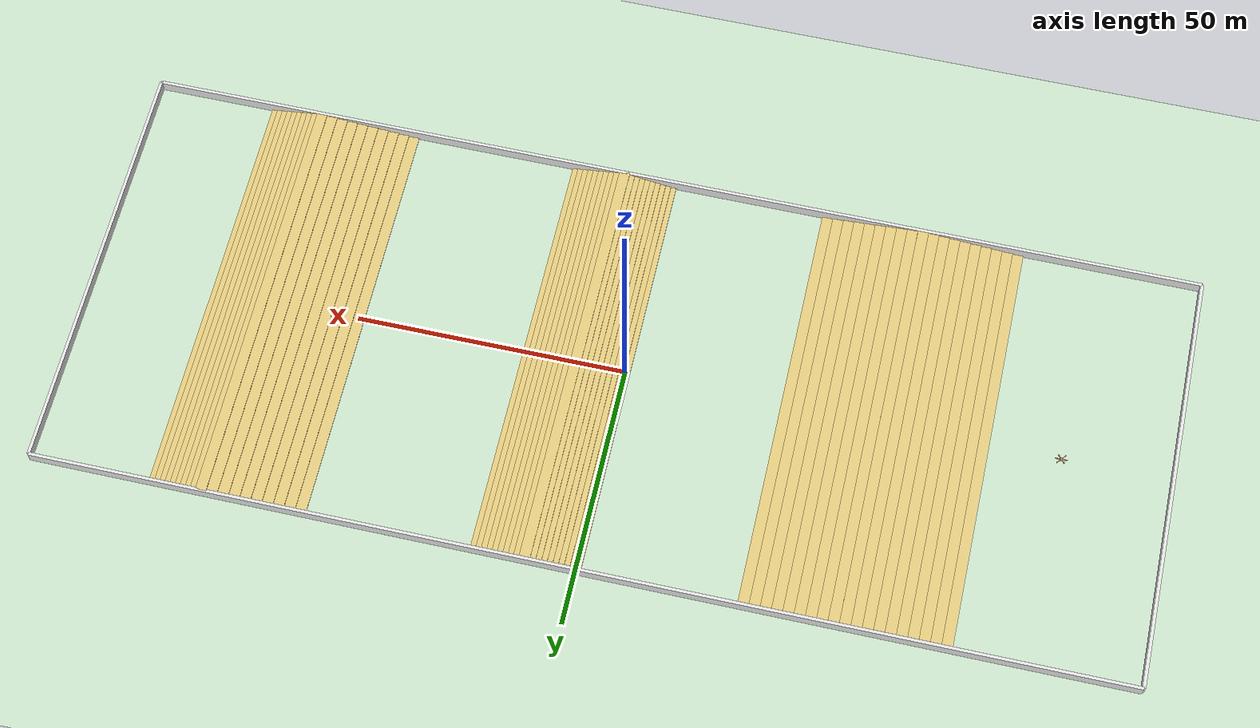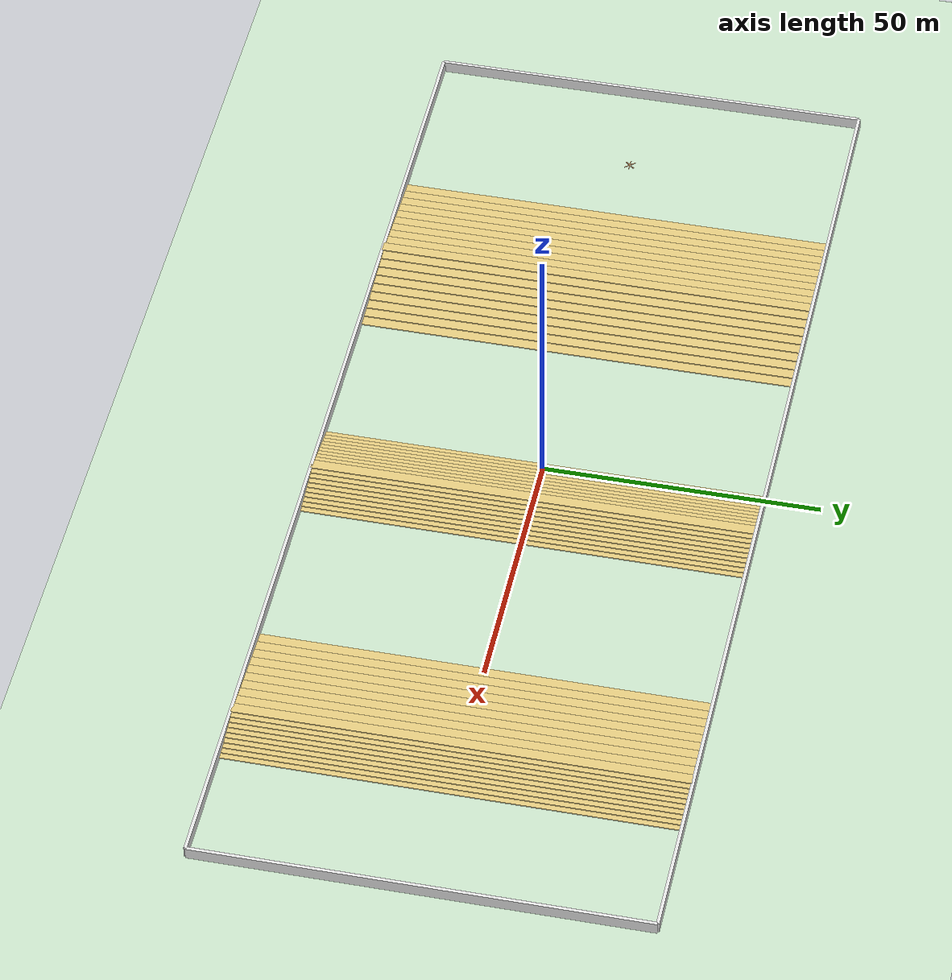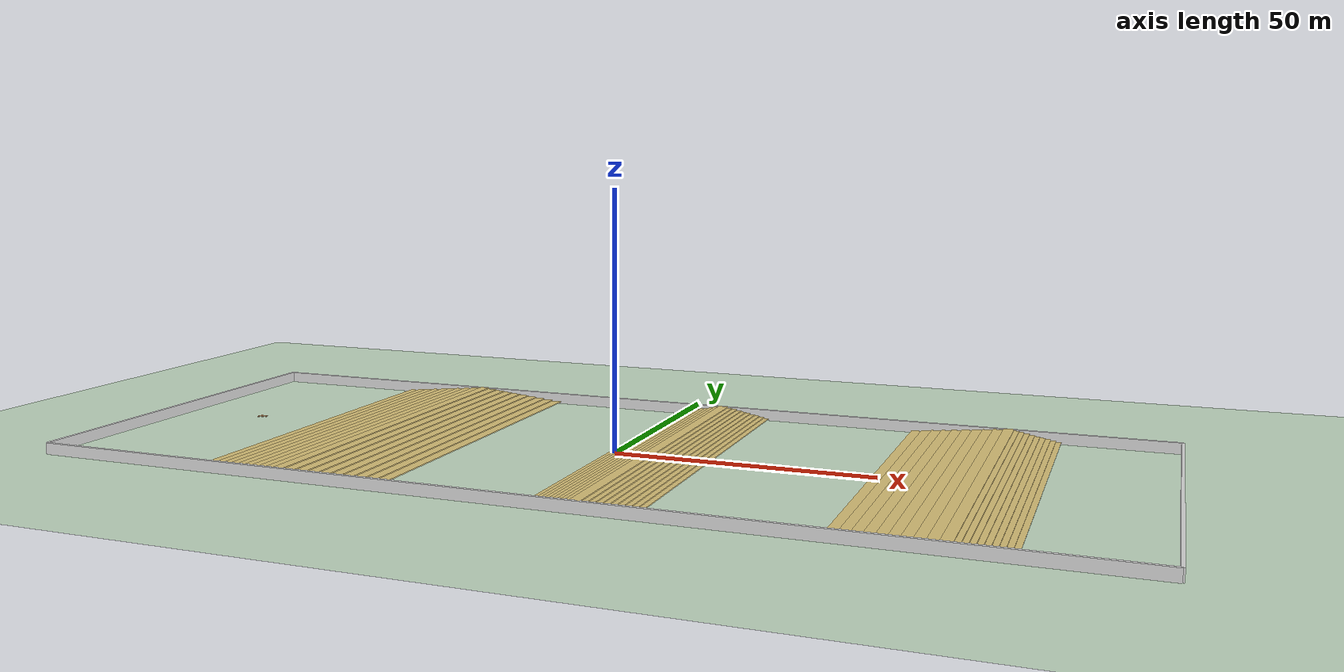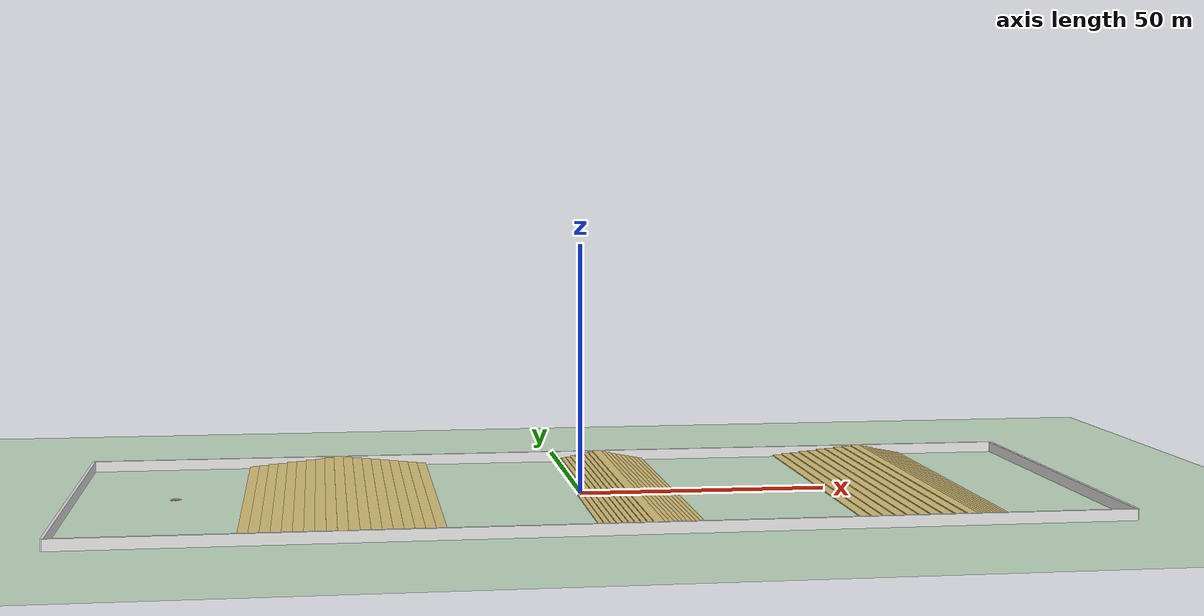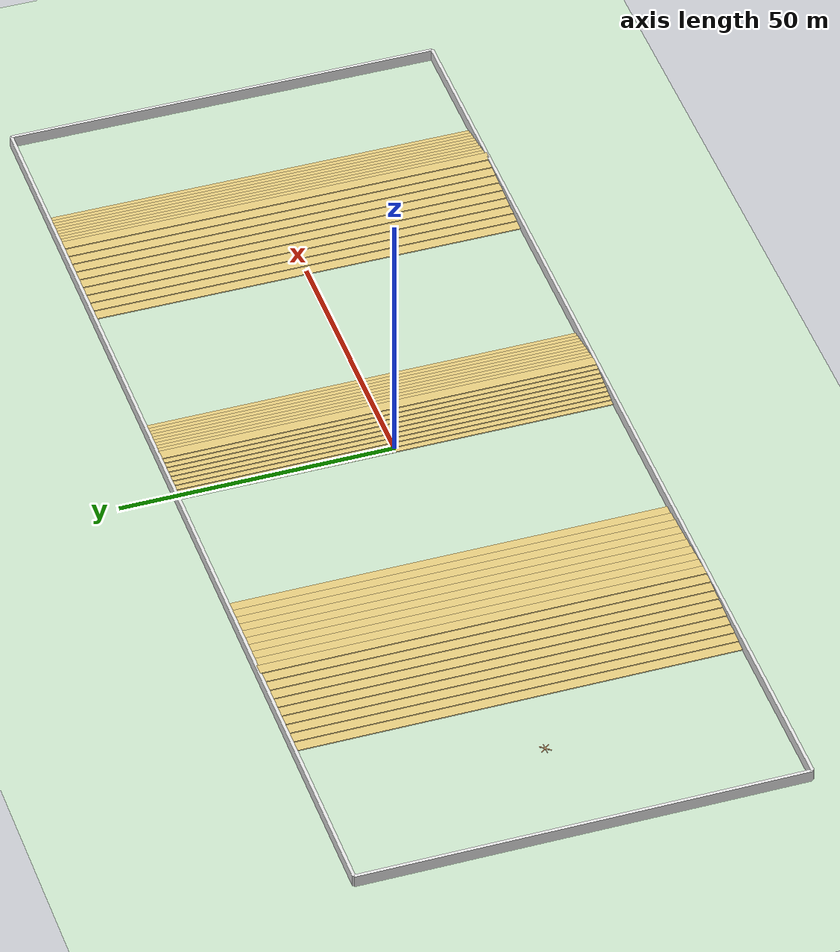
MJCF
<mujoco model="hexapod2dofmoveforwardstairs">
  <compiler angle="degree" coordinate="local" inertiafromgeom="true" settotalmass="40"/>
  <option integrator="RK4" timestep="0.005"/>
  <default>
    <joint armature="1" damping="1" limited="true"/>
     <geom conaffinity="0" condim="3" density="5.0" friction="1 0.5 0.5" margin="0.01" rgba="0.8 0.6 0.4 1" material="geom"/>
  </default>
    <asset>
        <texture type="skybox" builtin="gradient" rgb1=".1 .12 .15" rgb2="0 0 0" width="100" height="100"/>
        <texture builtin="checker" height="100" name="texplane" rgb1=".1 .1 .1" rgb2=".15 .15 0.15" type="2d" width="100"/>
        <material name="MatPlane" reflectance="0.5" shininess="1" specular="1" texrepeat="50 50" texture="texplane"/>
        <texture builtin="flat" height="1278" mark="cross" markrgb="1 1 1" name="texgeom" random="0.01" rgb1="0.8 0.6 0.4" rgb2="0.8 0.6 0.4" type="cube" width="127"/>
        <material name="geom" texture="texgeom" texuniform="true"/>
    </asset>
  <worldbody>
    <light cutoff="100" diffuse="1 1 1" dir="-0 0 -1.3" directional="true" exponent="1" pos="0 0 1.3" specular=".1 .1 .1"/>
    <geom conaffinity="1" condim="3" material="MatPlane" name="floor" pos="0 0 0" rgba="0.8 0.9 0.8 1" size="200 100 40" type="plane"/>

    <!-- the big border -->
    <geom pos="0 40 0" conaffinity="1" rgba="0.9 0.9 0.9 1" size="100 0.3 2" type="box"/>
    <geom pos="0 -40 0" conaffinity="1" rgba="0.9 0.9 0.9 1" size="100 0.3 2" type="box"/>
    <geom pos="100 0 0" conaffinity="1" rgba="0.9 0.9 0.9 1" size="0.3 40 2" type="box"/>
    <geom pos="-100 0 0" conaffinity="1" rgba="0.9 0.9 0.9 1" size="0.3 40 2" type="box"/>

     <geom  type="box" size="1 40 0.1" pos="-66 0 0.1"  rgba="0.9 0.8 0.5 1" conaffinity="1" />
     <geom  type="box" size="1 40 0.2" pos="-64 0 0.2"  rgba="0.9 0.8 0.5 1" conaffinity="1" />
     <geom  type="box" size="1 40 0.3" pos="-62 0 0.3"  rgba="0.9 0.8 0.5 1" conaffinity="1" />
     <geom  type="box" size="1 40 0.4" pos="-60 0 0.4"  rgba="0.9 0.8 0.5 1" conaffinity="1" />
     <geom  type="box" size="1 40 0.5" pos="-58 0 0.5"  rgba="0.9 0.8 0.5 1" conaffinity="1" />
     <geom  type="box" size="1 40 0.6" pos="-56 0 0.6"  rgba="0.9 0.8 0.5 1" conaffinity="1" />
     <geom  type="box" size="1 40 0.7" pos="-54 0 0.7"  rgba="0.9 0.8 0.5 1" conaffinity="1" />
     <geom  type="box" size="1 40 0.8" pos="-52 0 0.8"  rgba="0.9 0.8 0.5 1" conaffinity="1" />
     <geom  type="box" size="1 40 0.9" pos="-50 0 0.9"  rgba="0.9 0.8 0.5 1" conaffinity="1" />
     <geom  type="box" size="1 40 1.0" pos="-48 0 1.0"  rgba="0.9 0.8 0.5 1" conaffinity="1" />
     <geom  type="box" size="1 40 0.9" pos="-46 0 0.9"  rgba="0.9 0.8 0.5 1" conaffinity="1" />
     <geom  type="box" size="1 40 0.8" pos="-44 0 0.8"  rgba="0.9 0.8 0.5 1" conaffinity="1" />
     <geom  type="box" size="1 40 0.7" pos="-42 0 0.7"  rgba="0.9 0.8 0.5 1" conaffinity="1" />
     <geom  type="box" size="1 40 0.6" pos="-40 0 0.6"  rgba="0.9 0.8 0.5 1" conaffinity="1" />
     <geom  type="box" size="1 40 0.5" pos="-38 0 0.5"  rgba="0.9 0.8 0.5 1" conaffinity="1" />
     <geom  type="box" size="1 40 0.4" pos="-36 0 0.4"  rgba="0.9 0.8 0.5 1" conaffinity="1" />
     <geom  type="box" size="1 40 0.3" pos="-34 0 0.3"  rgba="0.9 0.8 0.5 1" conaffinity="1" />
     <geom  type="box" size="1 40 0.2" pos="-32 0 0.2"  rgba="0.9 0.8 0.5 1" conaffinity="1" />
     <geom  type="box" size="1 40 0.1" pos="-30 0 0.1"  rgba="0.9 0.8 0.5 1" conaffinity="1" />

     <geom  type="box" size="1 40 0.1" pos="0 0 0.1"  rgba="0.9 0.8 0.5 1" conaffinity="1" />
     <geom  type="box" size="1 40 0.2" pos="1 0 0.2"  rgba="0.9 0.8 0.5 1" conaffinity="1" />
     <geom  type="box" size="1 40 0.3" pos="2 0 0.3"  rgba="0.9 0.8 0.5 1" conaffinity="1" />
     <geom  type="box" size="1 40 0.4" pos="3 0 0.4"  rgba="0.9 0.8 0.5 1" conaffinity="1" />
     <geom  type="box" size="1 40 0.5" pos="4 0 0.5"  rgba="0.9 0.8 0.5 1" conaffinity="1" />
     <geom  type="box" size="1 40 0.6" pos="5 0 0.6"  rgba="0.9 0.8 0.5 1" conaffinity="1" />
     <geom  type="box" size="1 40 0.7" pos="6 0 0.7"  rgba="0.9 0.8 0.5 1" conaffinity="1" />
     <geom  type="box" size="1 40 0.8" pos="7 0 0.8"  rgba="0.9 0.8 0.5 1" conaffinity="1" />
     <geom  type="box" size="1 40 0.9" pos="8 0 0.9"  rgba="0.9 0.8 0.5 1" conaffinity="1" />
     <geom  type="box" size="1 40 1.0" pos="9 0 1.0"  rgba="0.9 0.8 0.5 1" conaffinity="1" />
     <geom  type="box" size="1 40 0.9" pos="10 0 0.9"  rgba="0.9 0.8 0.5 1" conaffinity="1" />
     <geom  type="box" size="1 40 0.8" pos="11 0 0.8"  rgba="0.9 0.8 0.5 1" conaffinity="1" />
     <geom  type="box" size="1 40 0.7" pos="12 0 0.7"  rgba="0.9 0.8 0.5 1" conaffinity="1" />
     <geom  type="box" size="1 40 0.6" pos="13 0 0.6"  rgba="0.9 0.8 0.5 1" conaffinity="1" />
     <geom  type="box" size="1 40 0.5" pos="14 0 0.5"  rgba="0.9 0.8 0.5 1" conaffinity="1" />
     <geom  type="box" size="1 40 0.4" pos="15 0 0.4"  rgba="0.9 0.8 0.5 1" conaffinity="1" />
     <geom  type="box" size="1 40 0.3" pos="16 0 0.3"  rgba="0.9 0.8 0.5 1" conaffinity="1" />
     <geom  type="box" size="1 40 0.2" pos="17 0 0.2"  rgba="0.9 0.8 0.5 1" conaffinity="1" />
     <geom  type="box" size="1 40 0.1" pos="18 0 0.1"  rgba="0.9 0.8 0.5 1" conaffinity="1" />

     <geom  type="box" size="1 40 0.1" pos="50 0 0.1"  rgba="0.9 0.8 0.5 1" conaffinity="1" />
     <geom  type="box" size="1 40 0.2" pos="52 0 0.2"  rgba="0.9 0.8 0.5 1" conaffinity="1" />
     <geom  type="box" size="1 40 0.3" pos="54 0 0.3"  rgba="0.9 0.8 0.5 1" conaffinity="1" />
     <geom  type="box" size="1 40 0.4" pos="56 0 0.4"  rgba="0.9 0.8 0.5 1" conaffinity="1" />
     <geom  type="box" size="1 40 0.5" pos="58 0 0.5"  rgba="0.9 0.8 0.5 1" conaffinity="1" />
     <geom  type="box" size="1 40 0.6" pos="60 0 0.6"  rgba="0.9 0.8 0.5 1" conaffinity="1" />
     <geom  type="box" size="1 40 0.7" pos="62 0 0.7"  rgba="0.9 0.8 0.5 1" conaffinity="1" />
     <geom  type="box" size="1 40 0.8" pos="64 0 0.8"  rgba="0.9 0.8 0.5 1" conaffinity="1" />
     <geom  type="box" size="1 40 0.9" pos="66 0 0.9"  rgba="0.9 0.8 0.5 1" conaffinity="1" />
     <geom  type="box" size="1 40 1.0" pos="68 0 1.0"  rgba="0.9 0.8 0.5 1" conaffinity="1" />
     <geom  type="box" size="1 40 0.9" pos="69 0 0.9"  rgba="0.9 0.8 0.5 1" conaffinity="1" />
     <geom  type="box" size="1 40 0.8" pos="70 0 0.8"  rgba="0.9 0.8 0.5 1" conaffinity="1" />
     <geom  type="box" size="1 40 0.7" pos="71 0 0.7"  rgba="0.9 0.8 0.5 1" conaffinity="1" />
     <geom  type="box" size="1 40 0.6" pos="72 0 0.6"  rgba="0.9 0.8 0.5 1" conaffinity="1" />
     <geom  type="box" size="1 40 0.5" pos="73 0 0.5"  rgba="0.9 0.8 0.5 1" conaffinity="1" />
     <geom  type="box" size="1 40 0.4" pos="74 0 0.4"  rgba="0.9 0.8 0.5 1" conaffinity="1" />
     <geom  type="box" size="1 40 0.3" pos="75 0 0.3"  rgba="0.9 0.8 0.5 1" conaffinity="1" />
     <geom  type="box" size="1 40 0.2" pos="76 0 0.2"  rgba="0.9 0.8 0.5 1" conaffinity="1" />
     <geom  type="box" size="1 40 0.1" pos="77 0 0.1"  rgba="0.9 0.8 0.5 1" conaffinity="1" />

     <body name="torso" pos="-80 0 0.75">
        <geom name="torso_geom" pos="0 0 0" size="0.25" type="sphere"/>
        <joint armature="0" damping="0" limited="false" margin="0.01" name="root" pos="0 0 0" type="free"/>
        <!-- Back left leg -->
    <body name="back_left_leg" pos="0 0 0">
      <geom fromto="0 0 0 0.18 0.215 0" name="aux_1_geom" size="0.08" type="capsule"/>
      <body name="aux_11" pos="0.18 0.215 0">
        <joint axis="0 0 1" name="hip_1" pos="0 0 0" range="-30 30" type="hinge"/>
        <geom fromto="0 0 0 0.18 0.215 0" name="back_left_leg_geom" size="0.08" type="capsule"/>
        <body name="aux_12" pos="0.18 0.215 0">
          <joint axis="-1 1 0" name="ankle_1" pos="0 0 0" range="30 70" type="hinge"/>
          <geom fromto="0 0 0 0.324 0.387 0" name="back_left_ankle_geom" size="0.08" type="capsule"/>
        </body>
      </body>
    </body>
    <!-- Back right leg -->
    <body name="back_right_leg" pos="0 0 0">
      <geom fromto="0 0 0 -0.18 0.215 0" name="aux_2_geom" size="0.08" type="capsule"/>
      <body name="aux_21" pos="-0.18 0.215 0">
        <joint axis="0 0 1" name="hip_2" pos="0 0 0" range="-30 30" type="hinge"/>
        <geom fromto="0 0 0 -0.18 0.215 0" name="back_right_leg_geom" size="0.08" type="capsule"/>
        <body name="aux_22" pos="-0.18 0.215 0">
          <joint axis="1 1 0" name="ankle_2" pos="0 0 0" range="-70 -30" type="hinge"/>
          <geom fromto="0 0 0 -0.324 0.387 0" name="back_right_ankle_geom" size="0.08" type="capsule"/>
        </body>
      </body>
    </body>
     <!-- Middle left leg -->
    <body name="middle_left_leg" pos="0 0 0">
      <geom fromto="0 0 0 0.2 0 0" name="aux_4_geom" size="0.08" type="capsule"/>
      <body name="aux_41" pos="0.2 0 0">
        <joint axis="0 0 1" name="hip_4" pos="0 0 0" range="-30 30" type="hinge"/>
        <geom fromto="0 0 0 0.275 0 0" name="middle_left_leg_geom" size="0.08" type="capsule"/>
        <body name="aux_42" pos="0.275 0 0">
          <joint axis="0 1 0" name="ankle_4" pos="0 0 0" range="30 70" type="hinge"/>
          <geom fromto="0 0 0 0.55 0 0" name="middle_left_ankle_geom" size="0.08" type="capsule"/>
        </body>
      </body>
    </body>
    <!-- Middle right leg -->
    <body name="middle_right_leg" pos="0 0 0">
      <geom fromto="0 0 0 -0.2 0 0" name="aux_3_geom" size="0.08" type="capsule"/>
      <body name="aux_31" pos="-0.2 0 0">
        <joint axis="0 0 1" name="hip_3" pos="0 0 0" range="-30 30" type="hinge"/>
        <geom fromto="0 0 0 -0.275 0 0" name="middle_right_leg_geom" size="0.08" type="capsule"/>
        <body name="aux_32" pos="-0.275 0 0">
          <joint axis="0 1 0" name="ankle_3" pos="0 0 0" range="-70 -30" type="hinge"/>
          <geom fromto="0 0 0 -0.55 0 0" name="middle_right_ankle_geom" size="0.08" type="capsule"/>
        </body>
      </body>
    </body>

    <!-- Front left leg -->
    <body name="front_left_leg" pos="0 0 0">
      <geom fromto="0 0 0 0.18 -0.215 0" name="aux_6_geom" size="0.08" type="capsule"/>
      <body name="aux_61" pos="0.18 -0.215 0">
        <joint axis="0 0 1" name="hip_6" pos="0 0 0" range="-30 30" type="hinge"/>
        <geom fromto="0 0 0 0.18 -0.215 0" name="front_left_leg_geom" size="0.08" type="capsule"/>
        <body name="aux_62" pos="0.18 -0.215 0">
          <joint axis="1 1 0" name="ankle_6" pos="0 0 0" range="30 70" type="hinge"/>
          <geom fromto="0 0 0 0.324 -0.387 0" name="front_left_ankle_geom" size="0.08" type="capsule"/>
        </body>
      </body>
    </body>
    <!-- Front right leg -->
    <body name="front_right_leg" pos="0 0 0">
      <geom fromto="0 0 0 -0.18 -0.215 0" name="aux_5_geom" size="0.08" type="capsule"/>
      <body name="aux_51" pos="-0.18 -0.215 0">
        <joint axis="0 0 1" name="hip_5" pos="0 0 0" range="-30 30" type="hinge"/>
        <geom fromto="0 0 0 -0.18 -0.215 0" name="front_right_leg_geom" size="0.08" type="capsule"/>
        <body name="aux_52" pos="-0.18 -0.215 0">
          <joint axis="-1 1 0" name="ankle_5" pos="0 0 0" range="-70 -30" type="hinge"/>
          <geom fromto="0 0 0 -0.324 -0.387 0" name="front_right_ankle_geom" size="0.08" type="capsule"/>
        </body>
      </body>
    </body>
    </body>

  </worldbody>

   <actuator>
    <motor ctrllimited="true" ctrlrange="-1.0 1.0" joint="hip_1" gear="150"/>
    <motor ctrllimited="true" ctrlrange="-1.0 1.0" joint="ankle_1" gear="150"/>
    <motor ctrllimited="true" ctrlrange="-1.0 1.0" joint="hip_2" gear="150"/>
    <motor ctrllimited="true" ctrlrange="-1.0 1.0" joint="ankle_2" gear="150"/>
    <motor ctrllimited="true" ctrlrange="-1.0 1.0" joint="hip_3" gear="150"/>
    <motor ctrllimited="true" ctrlrange="-1.0 1.0" joint="ankle_3" gear="150"/>
    <motor ctrllimited="true" ctrlrange="-1.0 1.0" joint="hip_4" gear="150"/>
    <motor ctrllimited="true" ctrlrange="-1.0 1.0" joint="ankle_4" gear="150"/>
    <motor ctrllimited="true" ctrlrange="-1.0 1.0" joint="hip_5" gear="150"/>
    <motor ctrllimited="true" ctrlrange="-1.0 1.0" joint="ankle_5" gear="150"/>
    <motor ctrllimited="true" ctrlrange="-1.0 1.0" joint="hip_6" gear="150"/>
    <motor ctrllimited="true" ctrlrange="-1.0 1.0" joint="ankle_6" gear="150"/>
  </actuator>

</mujoco>
